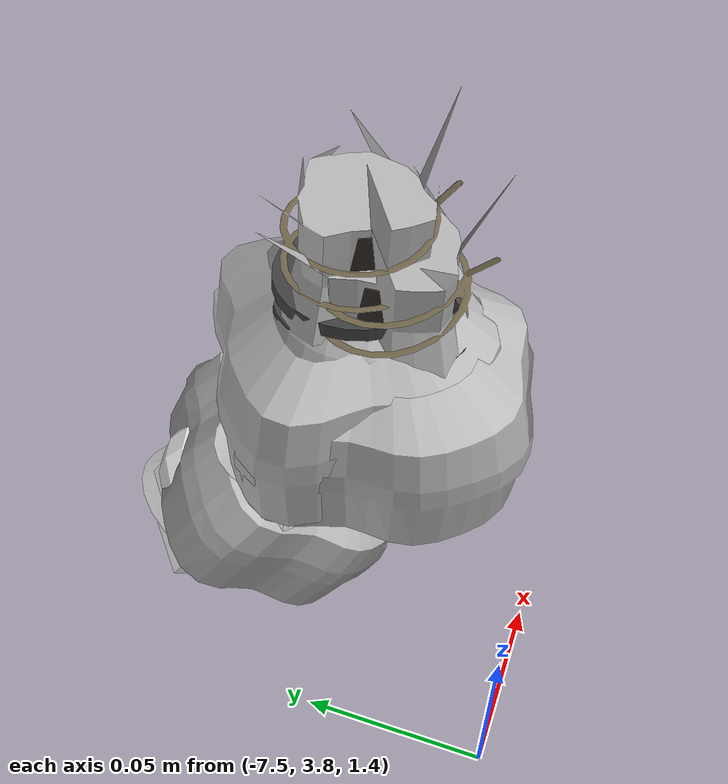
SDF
<sdf version="1.11">
 <world name="peach_orchard">
  <model name="ground">
   <static>true</static>
   <link name="link">
    <visual name="soil">
     <geometry><plane><normal>0 0 1</normal><size>32 22</size></plane></geometry>
     <material>
      <ambient>1 1 1 1</ambient>
      <diffuse>1 1 1 1</diffuse>
      <specular>0.1 0.1 0.1 1</specular>
      <pbr>
       <metal>
        <albedo_map>textures/soil_albedo.png</albedo_map>
        <normal_map type="tangent">textures/soil_normal.png</normal_map>
        <roughness>0.95</roughness>
        <metalness>0</metalness>
       </metal>
      </pbr>
     </material>
    </visual>
    <collision name="c_soil">
     <geometry><plane><normal>0 0 1</normal><size>32 22</size></plane></geometry>
    </collision>
   </link>
  </model>
  <model name="peach_tree_r0_t5_07">
   <pose>-7.45 3.8988 1.39773 0 0.659768 -1.13674</pose>
   <static>true</static>
   <link name="bag">
    <visual name="bag_mesh">
     <pose>0 0 0.0384512 0 0 -0</pose>
     <geometry>
      <mesh><uri>model://peach_sim/meshes/bagged_peach.glb</uri><scale>0.942861 1.11808 0.87389</scale></mesh>
     </geometry>
    </visual>
    <visual name="body">
     <pose>0 0 0.0204512 0 0 0</pose>
     <geometry><ellipsoid><radii>0.0353573 0.02907 0.0220872</radii></ellipsoid></geometry>
     <material>
      <ambient>1 1 1 1</ambient>
      <diffuse>1 1 1 1</diffuse>
      <specular>0.1 0.1 0.1 1</specular>
      <pbr>
       <metal>
        <albedo_map>textures/paper_bag_albedo.png</albedo_map>
        <normal_map type="tangent">textures/paper_bag_normal.png</normal_map>
        <roughness>0.72</roughness>
        <metalness>0</metalness>
       </metal>
      </pbr>
     </material>
    </visual>
    <visual name="bottom_fold">
     <pose>0 0 0.012 0 0 0.35</pose>
     <geometry><box><size>0.0548038 0.0334305 0.022</size></box></geometry>
     <material>
      <ambient>1 1 1 1</ambient>
      <diffuse>1 1 1 1</diffuse>
      <specular>0.1 0.1 0.1 1</specular>
      <pbr>
       <metal>
        <albedo_map>textures/paper_bag_albedo.png</albedo_map>
        <normal_map type="tangent">textures/paper_bag_normal.png</normal_map>
        <roughness>0.8</roughness>
        <metalness>0</metalness>
       </metal>
      </pbr>
     </material>
    </visual>
    <visual name="fruit">
     <pose>0 0 0.0207149 0 0 0</pose>
     <geometry><sphere><radius>0.0277835</radius></sphere></geometry>
     <material>
      <ambient>1 1 1 1</ambient>
      <diffuse>1 1 1 1</diffuse>
      <specular>0.1 0.1 0.1 1</specular>
      <pbr>
       <metal>
        <albedo_map>textures/fruit_skin_albedo.png</albedo_map>
        <normal_map type="tangent">textures/fruit_skin_normal.png</normal_map>
        <roughness>0.55</roughness>
        <metalness>0</metalness>
       </metal>
      </pbr>
     </material>
    </visual>
    <visual name="neck">
     <pose>0 0 0.0499023 0 0 0</pose>
     <geometry><cylinder><radius>0.013</radius><length>0.018</length></cylinder></geometry>
     <material>
      <ambient>1 1 1 1</ambient>
      <diffuse>1 1 1 1</diffuse>
      <specular>0.1 0.1 0.1 1</specular>
      <pbr>
       <metal>
        <albedo_map>textures/paper_bag_albedo.png</albedo_map>
        <normal_map type="tangent">textures/paper_bag_normal.png</normal_map>
        <roughness>0.75</roughness>
        <metalness>0</metalness>
       </metal>
      </pbr>
     </material>
    </visual>
    <visual name="gather">
     <pose>0 0 0.0309023 0 0 0</pose>
     <geometry><cylinder><radius>0.019</radius><length>0.02</length></cylinder></geometry>
     <material>
      <ambient>1 1 1 1</ambient>
      <diffuse>1 1 1 1</diffuse>
      <specular>0.1 0.1 0.1 1</specular>
      <pbr>
       <metal>
        <albedo_map>textures/paper_bag_albedo.png</albedo_map>
        <normal_map type="tangent">textures/paper_bag_normal.png</normal_map>
        <roughness>0.8</roughness>
        <metalness>0</metalness>
       </metal>
      </pbr>
     </material>
    </visual>
    <visual name="inner_paper">
     <pose>0 0 0.0549023 0 0 0</pose>
     <geometry><cylinder><radius>0.01</radius><length>0.008</length></cylinder></geometry>
     <material>
      <ambient>0.180392 0.14902 0.133333 1</ambient>
      <diffuse>0.180392 0.14902 0.133333 1</diffuse>
      <specular>0.1 0.1 0.1 1</specular>
     </material>
    </visual>
    <visual name="wire_0">
     <pose>0 0 0.0449023 0 0 0</pose>
     <geometry><cylinder><radius>0.0205</radius><length>0.0035</length></cylinder></geometry>
     <material>
      <ambient>0.25 0.25 0.25 1</ambient>
      <diffuse>0.25 0.25 0.25 1</diffuse>
      <specular>0.1 0.1 0.1 1</specular>
     </material>
    </visual>
    <visual name="wire_1">
     <pose>0 0 0.0519023 0 0 0</pose>
     <geometry><cylinder><radius>0.0205</radius><length>0.0035</length></cylinder></geometry>
     <material>
      <ambient>0.25 0.25 0.25 1</ambient>
      <diffuse>0.25 0.25 0.25 1</diffuse>
      <specular>0.1 0.1 0.1 1</specular>
     </material>
    </visual>
    <visual name="wire_tail">
     <pose>0.01 0 0.0529023 0 0.521618 0</pose>
     <geometry><cylinder><radius>0.0012</radius><length>0.026</length></cylinder></geometry>
     <material>
      <ambient>0.25 0.25 0.25 1</ambient>
      <diffuse>0.25 0.25 0.25 1</diffuse>
      <specular>0.1 0.1 0.1 1</specular>
     </material>
    </visual>
    <collision name="c_body">
     <pose>0 0 0.0204512 0 0 0</pose>
     <geometry><cylinder><radius>0.0353573</radius><length>0.0409023</length></cylinder></geometry>
    </collision>
   </link>
  </model>
  <model name="peach_tree_r0_t5_08">
   <pose>-7.45 3.84645 1.45 0 0.00135338 -1.55241</pose>
   <static>true</static>
   <link name="bag">
    <visual name="bag_mesh">
     <pose>0 0 0.0403217 0 0 -0</pose>
     <geometry>
      <mesh><uri>model://peach_sim/meshes/bagged_peach.glb</uri><scale>0.955468 1.18173 0.916403</scale></mesh>
     </geometry>
    </visual>
    <visual name="body">
     <pose>0 0 0.0223217 0 0 0</pose>
     <geometry><ellipsoid><radii>0.0358301 0.0307249 0.0241075</radii></ellipsoid></geometry>
     <material>
      <ambient>1 1 1 1</ambient>
      <diffuse>1 1 1 1</diffuse>
      <specular>0.1 0.1 0.1 1</specular>
      <pbr>
       <metal>
        <albedo_map>textures/paper_bag_albedo.png</albedo_map>
        <normal_map type="tangent">textures/paper_bag_normal.png</normal_map>
        <roughness>0.72</roughness>
        <metalness>0</metalness>
       </metal>
      </pbr>
     </material>
    </visual>
    <visual name="bottom_fold">
     <pose>0 0 0.012 0 0 0.35</pose>
     <geometry><box><size>0.0555366 0.0353336 0.022</size></box></geometry>
     <material>
      <ambient>1 1 1 1</ambient>
      <diffuse>1 1 1 1</diffuse>
      <specular>0.1 0.1 0.1 1</specular>
      <pbr>
       <metal>
        <albedo_map>textures/paper_bag_albedo.png</albedo_map>
        <normal_map type="tangent">textures/paper_bag_normal.png</normal_map>
        <roughness>0.8</roughness>
        <metalness>0</metalness>
       </metal>
      </pbr>
     </material>
    </visual>
    <visual name="fruit">
     <pose>0 0 0.0191022 0 0 0</pose>
     <geometry><sphere><radius>0.0261063</radius></sphere></geometry>
     <material>
      <ambient>1 1 1 1</ambient>
      <diffuse>1 1 1 1</diffuse>
      <specular>0.1 0.1 0.1 1</specular>
      <pbr>
       <metal>
        <albedo_map>textures/fruit_skin_albedo.png</albedo_map>
        <normal_map type="tangent">textures/fruit_skin_normal.png</normal_map>
        <roughness>0.55</roughness>
        <metalness>0</metalness>
       </metal>
      </pbr>
     </material>
    </visual>
    <visual name="neck">
     <pose>0 0 0.0536435 0 0 0</pose>
     <geometry><cylinder><radius>0.013</radius><length>0.018</length></cylinder></geometry>
     <material>
      <ambient>1 1 1 1</ambient>
      <diffuse>1 1 1 1</diffuse>
      <specular>0.1 0.1 0.1 1</specular>
      <pbr>
       <metal>
        <albedo_map>textures/paper_bag_albedo.png</albedo_map>
        <normal_map type="tangent">textures/paper_bag_normal.png</normal_map>
        <roughness>0.75</roughness>
        <metalness>0</metalness>
       </metal>
      </pbr>
     </material>
    </visual>
    <visual name="gather">
     <pose>0 0 0.0346435 0 0 0</pose>
     <geometry><cylinder><radius>0.019</radius><length>0.02</length></cylinder></geometry>
     <material>
      <ambient>1 1 1 1</ambient>
      <diffuse>1 1 1 1</diffuse>
      <specular>0.1 0.1 0.1 1</specular>
      <pbr>
       <metal>
        <albedo_map>textures/paper_bag_albedo.png</albedo_map>
        <normal_map type="tangent">textures/paper_bag_normal.png</normal_map>
        <roughness>0.8</roughness>
        <metalness>0</metalness>
       </metal>
      </pbr>
     </material>
    </visual>
    <visual name="inner_paper">
     <pose>0 0 0.0586435 0 0 0</pose>
     <geometry><cylinder><radius>0.01</radius><length>0.008</length></cylinder></geometry>
     <material>
      <ambient>0.180392 0.14902 0.133333 1</ambient>
      <diffuse>0.180392 0.14902 0.133333 1</diffuse>
      <specular>0.1 0.1 0.1 1</specular>
     </material>
    </visual>
    <visual name="wire_0">
     <pose>0 0 0.0486435 0 0 0</pose>
     <geometry><cylinder><radius>0.0205</radius><length>0.0035</length></cylinder></geometry>
     <material>
      <ambient>0.25 0.25 0.25 1</ambient>
      <diffuse>0.25 0.25 0.25 1</diffuse>
      <specular>0.1 0.1 0.1 1</specular>
     </material>
    </visual>
    <visual name="wire_1">
     <pose>0 0 0.0556435 0 0 0</pose>
     <geometry><cylinder><radius>0.0205</radius><length>0.0035</length></cylinder></geometry>
     <material>
      <ambient>0.25 0.25 0.25 1</ambient>
      <diffuse>0.25 0.25 0.25 1</diffuse>
      <specular>0.1 0.1 0.1 1</specular>
     </material>
    </visual>
    <visual name="wire_tail">
     <pose>0.01 0 0.0566435 0 0.521618 0</pose>
     <geometry><cylinder><radius>0.0012</radius><length>0.026</length></cylinder></geometry>
     <material>
      <ambient>0.25 0.25 0.25 1</ambient>
      <diffuse>0.25 0.25 0.25 1</diffuse>
      <specular>0.1 0.1 0.1 1</specular>
     </material>
    </visual>
    <collision name="c_body">
     <pose>0 0 0.0223217 0 0 0</pose>
     <geometry><cylinder><radius>0.0358301</radius><length>0.0446435</length></cylinder></geometry>
    </collision>
   </link>
  </model>
  <model name="peach_tree_r0_t5_09">
   <pose>-7.45 3.8578 1.45 0 0.0295478 -1.09068</pose>
   <static>true</static>
   <link name="bag">
    <visual name="bag_mesh">
     <pose>0 0 0.0459882 0 0 -0</pose>
     <geometry>
      <mesh><uri>model://peach_sim/meshes/bagged_peach.glb</uri><scale>0.947934 1.08931 1.04519</scale></mesh>
     </geometry>
    </visual>
    <visual name="body">
     <pose>0 0 0.0279882 0 0 0</pose>
     <geometry><ellipsoid><radii>0.0355475 0.0283222 0.0302272</radii></ellipsoid></geometry>
     <material>
      <ambient>1 1 1 1</ambient>
      <diffuse>1 1 1 1</diffuse>
      <specular>0.1 0.1 0.1 1</specular>
      <pbr>
       <metal>
        <albedo_map>textures/paper_bag_albedo.png</albedo_map>
        <normal_map type="tangent">textures/paper_bag_normal.png</normal_map>
        <roughness>0.72</roughness>
        <metalness>0</metalness>
       </metal>
      </pbr>
     </material>
    </visual>
    <visual name="bottom_fold">
     <pose>0 0 0.012 0 0 0.35</pose>
     <geometry><box><size>0.0550987 0.0325705 0.022</size></box></geometry>
     <material>
      <ambient>1 1 1 1</ambient>
      <diffuse>1 1 1 1</diffuse>
      <specular>0.1 0.1 0.1 1</specular>
      <pbr>
       <metal>
        <albedo_map>textures/paper_bag_albedo.png</albedo_map>
        <normal_map type="tangent">textures/paper_bag_normal.png</normal_map>
        <roughness>0.8</roughness>
        <metalness>0</metalness>
       </metal>
      </pbr>
     </material>
    </visual>
    <visual name="fruit">
     <pose>0 0 0.0195508 0 0 0</pose>
     <geometry><sphere><radius>0.0265728</radius></sphere></geometry>
     <material>
      <ambient>1 1 1 1</ambient>
      <diffuse>1 1 1 1</diffuse>
      <specular>0.1 0.1 0.1 1</specular>
      <pbr>
       <metal>
        <albedo_map>textures/fruit_skin_albedo.png</albedo_map>
        <normal_map type="tangent">textures/fruit_skin_normal.png</normal_map>
        <roughness>0.55</roughness>
        <metalness>0</metalness>
       </metal>
      </pbr>
     </material>
    </visual>
    <visual name="neck">
     <pose>0 0 0.0649763 0 0 0</pose>
     <geometry><cylinder><radius>0.013</radius><length>0.018</length></cylinder></geometry>
     <material>
      <ambient>1 1 1 1</ambient>
      <diffuse>1 1 1 1</diffuse>
      <specular>0.1 0.1 0.1 1</specular>
      <pbr>
       <metal>
        <albedo_map>textures/paper_bag_albedo.png</albedo_map>
        <normal_map type="tangent">textures/paper_bag_normal.png</normal_map>
        <roughness>0.75</roughness>
        <metalness>0</metalness>
       </metal>
      </pbr>
     </material>
    </visual>
    <visual name="gather">
     <pose>0 0 0.0459763 0 0 0</pose>
     <geometry><cylinder><radius>0.019</radius><length>0.02</length></cylinder></geometry>
     <material>
      <ambient>1 1 1 1</ambient>
      <diffuse>1 1 1 1</diffuse>
      <specular>0.1 0.1 0.1 1</specular>
      <pbr>
       <metal>
        <albedo_map>textures/paper_bag_albedo.png</albedo_map>
        <normal_map type="tangent">textures/paper_bag_normal.png</normal_map>
        <roughness>0.8</roughness>
        <metalness>0</metalness>
       </metal>
      </pbr>
     </material>
    </visual>
    <visual name="inner_paper">
     <pose>0 0 0.0699763 0 0 0</pose>
     <geometry><cylinder><radius>0.01</radius><length>0.008</length></cylinder></geometry>
     <material>
      <ambient>0.180392 0.14902 0.133333 1</ambient>
      <diffuse>0.180392 0.14902 0.133333 1</diffuse>
      <specular>0.1 0.1 0.1 1</specular>
     </material>
    </visual>
    <visual name="wire_0">
     <pose>0 0 0.0599763 0 0 0</pose>
     <geometry><cylinder><radius>0.0205</radius><length>0.0035</length></cylinder></geometry>
     <material>
      <ambient>0.25 0.25 0.25 1</ambient>
      <diffuse>0.25 0.25 0.25 1</diffuse>
      <specular>0.1 0.1 0.1 1</specular>
     </material>
    </visual>
    <visual name="wire_1">
     <pose>0 0 0.0669763 0 0 0</pose>
     <geometry><cylinder><radius>0.0205</radius><length>0.0035</length></cylinder></geometry>
     <material>
      <ambient>0.25 0.25 0.25 1</ambient>
      <diffuse>0.25 0.25 0.25 1</diffuse>
      <specular>0.1 0.1 0.1 1</specular>
     </material>
    </visual>
    <visual name="wire_tail">
     <pose>0.01 0 0.0679763 0 0.521618 0</pose>
     <geometry><cylinder><radius>0.0012</radius><length>0.026</length></cylinder></geometry>
     <material>
      <ambient>0.25 0.25 0.25 1</ambient>
      <diffuse>0.25 0.25 0.25 1</diffuse>
      <specular>0.1 0.1 0.1 1</specular>
     </material>
    </visual>
    <collision name="c_body">
     <pose>0 0 0.0279882 0 0 0</pose>
     <geometry><cylinder><radius>0.0355475</radius><length>0.0559763</length></cylinder></geometry>
    </collision>
   </link>
  </model>
 </world>
</sdf>
